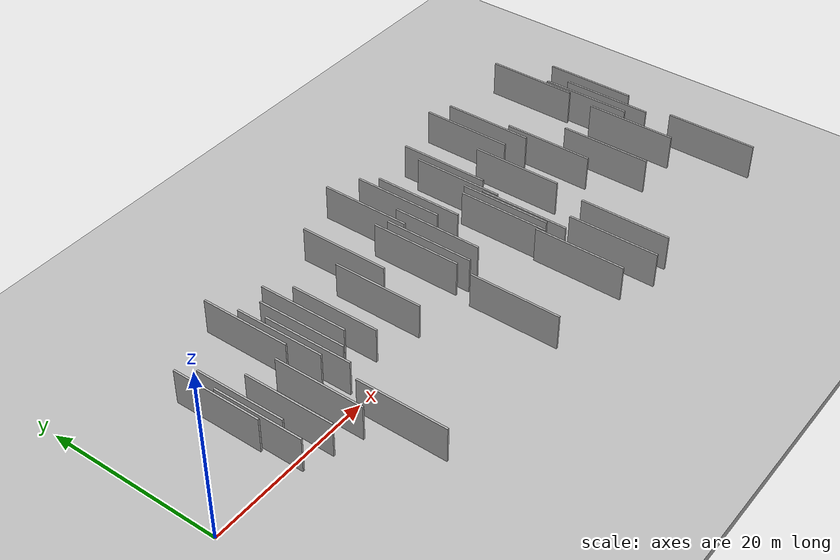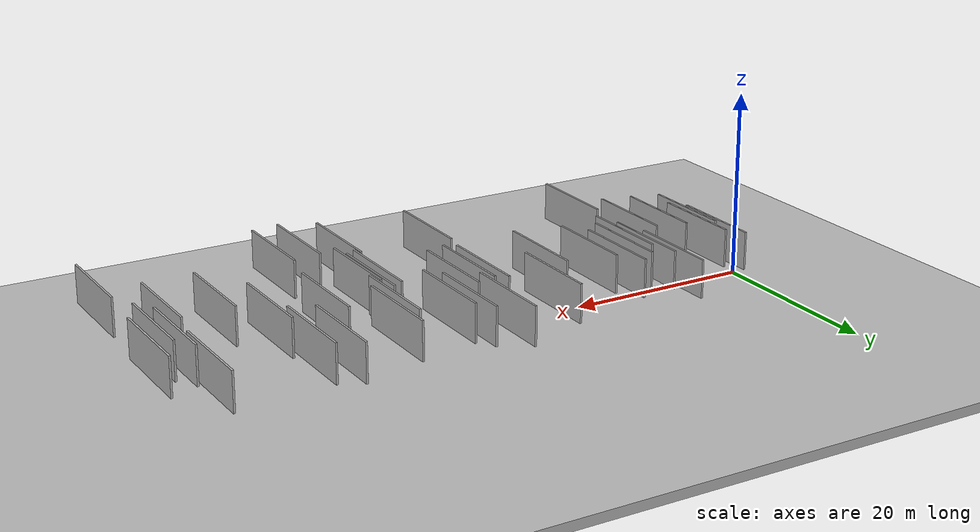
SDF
<?xml version="1.0" encoding="utf-8"?>

<sdf version="1.6">

   <world name="default">

      <gui fullscreen="0">

         <camera name="user_camera">

            <pose>-15 0 4.57585 0 0 0</pose>

            <view_controller>orbit</view_controller>

         </camera>

      </gui>

      <scene>

         <sky>

           <clouds>

             <speed>12</speed>

           </clouds>

         </sky>

         <ambient>0.4 0.4 0.4 1</ambient>

         <background>0.7 0.7 0.7 1</background>

         <shadows>1</shadows>

      </scene>

      <gravity>0 0 -9.8066</gravity>

      <magnetic_field>6e-06 2.3e-05 -4.2e-05</magnetic_field>

      <physics default="0" name="default_physics" type="ode">

         <ode>

            <solver>

               <type>quick</type>

               <iters>10</iters>

               <sor>1.0</sor>

               <use_dynamic_moi_rescaling>0</use_dynamic_moi_rescaling>

            </solver>

            <constraints>

               <cfm>0</cfm>

               <erp>0.2</erp>

               <contact_max_correcting_vel>100</contact_max_correcting_vel>

               <contact_surface_layer>0.001</contact_surface_layer>

            </constraints>

         </ode>

         <max_step_size>0.004</max_step_size>

         <real_time_factor>1</real_time_factor>

         <real_time_update_rate>250</real_time_update_rate>

      </physics>

      <light name="sun" type="directional">

         <cast_shadows>1</cast_shadows>

         <pose>0 0 10 0 0 0</pose>

         <diffuse>0.8 0.8 0.8 1</diffuse>

         <specular>0.2 0.2 0.2 1</specular>

         <attenuation>

            <range>1000</range>

            <constant>0.9</constant>

            <linear>0.01</linear>

            <quadratic>0.001</quadratic>

         </attenuation>

         <direction>-0.5 0.1 -0.9</direction>

      </light>

      <include>

         <name>ground_plane_1</name>

         <uri>model://HANNAS_ground_plane</uri>

         <pose>0 0 0  0 0 0</pose>

      </include>

      <include>

         <name>ground_plane_2</name>

         <uri>model://HANNAS_ground_plane</uri>

         <pose>100 0 0  0 0 0</pose>

      </include>

      <model name="HANNAS_wall_1">

         <static>1</static>

         <pose frame="">15.5890 -8.3311 5.0 0.000000 0.000000 1.570796</pose>

         <link name="link">

            <pose frame="">0 0 2.00 0 0 0</pose>

            <collision name="collision">

               <geometry>

                  <box>

                     <size>10.00 0.2 4.00</size>

                  </box>

               </geometry>

               <max_contacts>10</max_contacts>

               <surface>

                  <contact>

                     <ode/>

                  </contact>

                  <bounce/>

                  <friction>

                     <torsional>

                        <ode/>

                     </torsional>

                     <ode/>

                  </friction>

               </surface>

            </collision>

            <visual name="visual">

               <cast_shadows>0</cast_shadows>

               <geometry>

                  <box>

                     <size>10.00 0.2 4.00</size>

                  </box>

               </geometry>

               <material>

                  <script>

                     <uri>model://HANNAS_wall/materials/scripts</uri>

                     <uri>model://HANNAS_wall/materials/textures</uri>

                     <name>vrc/HANNAS_wall</name>

                  </script>

               </material>

            </visual>

            <self_collide>0</self_collide>

            <enable_wind>0</enable_wind>

            <kinematic>0</kinematic>

         </link>

      </model>

      <model name="HANNAS_wall_2">

         <static>1</static>

         <pose frame="">21.6194 4.1106 5.0 0.000000 0.000000 1.570796</pose>

         <link name="link">

            <pose frame="">0 0 2.00 0 0 0</pose>

            <collision name="collision">

               <geometry>

                  <box>

                     <size>10.00 0.2 4.00</size>

                  </box>

               </geometry>

               <max_contacts>10</max_contacts>

               <surface>

                  <contact>

                     <ode/>

                  </contact>

                  <bounce/>

                  <friction>

                     <torsional>

                        <ode/>

                     </torsional>

                     <ode/>

                  </friction>

               </surface>

            </collision>

            <visual name="visual">

               <cast_shadows>0</cast_shadows>

               <geometry>

                  <box>

                     <size>10.00 0.2 4.00</size>

                  </box>

               </geometry>

               <material>

                  <script>

                     <uri>model://HANNAS_wall/materials/scripts</uri>

                     <uri>model://HANNAS_wall/materials/textures</uri>

                     <name>vrc/HANNAS_wall</name>

                  </script>

               </material>

            </visual>

            <self_collide>0</self_collide>

            <enable_wind>0</enable_wind>

            <kinematic>0</kinematic>

         </link>

      </model>

      <model name="HANNAS_wall_3">

         <static>1</static>

         <pose frame="">10.1563 -0.1490 5.0 0.000000 0.000000 1.570796</pose>

         <link name="link">

            <pose frame="">0 0 2.00 0 0 0</pose>

            <collision name="collision">

               <geometry>

                  <box>

                     <size>10.00 0.2 4.00</size>

                  </box>

               </geometry>

               <max_contacts>10</max_contacts>

               <surface>

                  <contact>

                     <ode/>

                  </contact>

                  <bounce/>

                  <friction>

                     <torsional>

                        <ode/>

                     </torsional>

                     <ode/>

                  </friction>

               </surface>

            </collision>

            <visual name="visual">

               <cast_shadows>0</cast_shadows>

               <geometry>

                  <box>

                     <size>10.00 0.2 4.00</size>

                  </box>

               </geometry>

               <material>

                  <script>

                     <uri>model://HANNAS_wall/materials/scripts</uri>

                     <uri>model://HANNAS_wall/materials/textures</uri>

                     <name>vrc/HANNAS_wall</name>

                  </script>

               </material>

            </visual>

            <self_collide>0</self_collide>

            <enable_wind>0</enable_wind>

            <kinematic>0</kinematic>

         </link>

      </model>

      <model name="HANNAS_wall_4">

         <static>1</static>

         <pose frame="">7.2068 0.8207 5.0 0.000000 0.000000 1.570796</pose>

         <link name="link">

            <pose frame="">0 0 2.00 0 0 0</pose>

            <collision name="collision">

               <geometry>

                  <box>

                     <size>10.00 0.2 4.00</size>

                  </box>

               </geometry>

               <max_contacts>10</max_contacts>

               <surface>

                  <contact>

                     <ode/>

                  </contact>

                  <bounce/>

                  <friction>

                     <torsional>

                        <ode/>

                     </torsional>

                     <ode/>

                  </friction>

               </surface>

            </collision>

            <visual name="visual">

               <cast_shadows>0</cast_shadows>

               <geometry>

                  <box>

                     <size>10.00 0.2 4.00</size>

                  </box>

               </geometry>

               <material>

                  <script>

                     <uri>model://HANNAS_wall/materials/scripts</uri>

                     <uri>model://HANNAS_wall/materials/textures</uri>

                     <name>vrc/HANNAS_wall</name>

                  </script>

               </material>

            </visual>

            <self_collide>0</self_collide>

            <enable_wind>0</enable_wind>

            <kinematic>0</kinematic>

         </link>

      </model>

      <model name="HANNAS_wall_5">

         <static>1</static>

         <pose frame="">39.8108 8.0568 5.0 0.000000 0.000000 1.570796</pose>

         <link name="link">

            <pose frame="">0 0 2.00 0 0 0</pose>

            <collision name="collision">

               <geometry>

                  <box>

                     <size>10.00 0.2 4.00</size>

                  </box>

               </geometry>

               <max_contacts>10</max_contacts>

               <surface>

                  <contact>

                     <ode/>

                  </contact>

                  <bounce/>

                  <friction>

                     <torsional>

                        <ode/>

                     </torsional>

                     <ode/>

                  </friction>

               </surface>

            </collision>

            <visual name="visual">

               <cast_shadows>0</cast_shadows>

               <geometry>

                  <box>

                     <size>10.00 0.2 4.00</size>

                  </box>

               </geometry>

               <material>

                  <script>

                     <uri>model://HANNAS_wall/materials/scripts</uri>

                     <uri>model://HANNAS_wall/materials/textures</uri>

                     <name>vrc/HANNAS_wall</name>

                  </script>

               </material>

            </visual>

            <self_collide>0</self_collide>

            <enable_wind>0</enable_wind>

            <kinematic>0</kinematic>

         </link>

      </model>

      <model name="HANNAS_wall_6">

         <static>1</static>

         <pose frame="">33.6187 3.7154 5.0 0.000000 0.000000 1.570796</pose>

         <link name="link">

            <pose frame="">0 0 2.00 0 0 0</pose>

            <collision name="collision">

               <geometry>

                  <box>

                     <size>10.00 0.2 4.00</size>

                  </box>

               </geometry>

               <max_contacts>10</max_contacts>

               <surface>

                  <contact>

                     <ode/>

                  </contact>

                  <bounce/>

                  <friction>

                     <torsional>

                        <ode/>

                     </torsional>

                     <ode/>

                  </friction>

               </surface>

            </collision>

            <visual name="visual">

               <cast_shadows>0</cast_shadows>

               <geometry>

                  <box>

                     <size>10.00 0.2 4.00</size>

                  </box>

               </geometry>

               <material>

                  <script>

                     <uri>model://HANNAS_wall/materials/scripts</uri>

                     <uri>model://HANNAS_wall/materials/textures</uri>

                     <name>vrc/HANNAS_wall</name>

                  </script>

               </material>

            </visual>

            <self_collide>0</self_collide>

            <enable_wind>0</enable_wind>

            <kinematic>0</kinematic>

         </link>

      </model>

      <model name="HANNAS_wall_7">

         <static>1</static>

         <pose frame="">68.3267 5.3271 5.0 0.000000 0.000000 1.570796</pose>

         <link name="link">

            <pose frame="">0 0 2.00 0 0 0</pose>

            <collision name="collision">

               <geometry>

                  <box>

                     <size>10.00 0.2 4.00</size>

                  </box>

               </geometry>

               <max_contacts>10</max_contacts>

               <surface>

                  <contact>

                     <ode/>

                  </contact>

                  <bounce/>

                  <friction>

                     <torsional>

                        <ode/>

                     </torsional>

                     <ode/>

                  </friction>

               </surface>

            </collision>

            <visual name="visual">

               <cast_shadows>0</cast_shadows>

               <geometry>

                  <box>

                     <size>10.00 0.2 4.00</size>

                  </box>

               </geometry>

               <material>

                  <script>

                     <uri>model://HANNAS_wall/materials/scripts</uri>

                     <uri>model://HANNAS_wall/materials/textures</uri>

                     <name>vrc/HANNAS_wall</name>

                  </script>

               </material>

            </visual>

            <self_collide>0</self_collide>

            <enable_wind>0</enable_wind>

            <kinematic>0</kinematic>

         </link>

      </model>

      <model name="HANNAS_wall_8">

         <static>1</static>

         <pose frame="">46.3259 -10.9554 5.0 0.000000 0.000000 1.570796</pose>

         <link name="link">

            <pose frame="">0 0 2.00 0 0 0</pose>

            <collision name="collision">

               <geometry>

                  <box>

                     <size>10.00 0.2 4.00</size>

                  </box>

               </geometry>

               <max_contacts>10</max_contacts>

               <surface>

                  <contact>

                     <ode/>

                  </contact>

                  <bounce/>

                  <friction>

                     <torsional>

                        <ode/>

                     </torsional>

                     <ode/>

                  </friction>

               </surface>

            </collision>

            <visual name="visual">

               <cast_shadows>0</cast_shadows>

               <geometry>

                  <box>

                     <size>10.00 0.2 4.00</size>

                  </box>

               </geometry>

               <material>

                  <script>

                     <uri>model://HANNAS_wall/materials/scripts</uri>

                     <uri>model://HANNAS_wall/materials/textures</uri>

                     <name>vrc/HANNAS_wall</name>

                  </script>

               </material>

            </visual>

            <self_collide>0</self_collide>

            <enable_wind>0</enable_wind>

            <kinematic>0</kinematic>

         </link>

      </model>

      <model name="HANNAS_wall_9">

         <static>1</static>

         <pose frame="">43.0103 -0.1983 5.0 0.000000 0.000000 1.570796</pose>

         <link name="link">

            <pose frame="">0 0 2.00 0 0 0</pose>

            <collision name="collision">

               <geometry>

                  <box>

                     <size>10.00 0.2 4.00</size>

                  </box>

               </geometry>

               <max_contacts>10</max_contacts>

               <surface>

                  <contact>

                     <ode/>

                  </contact>

                  <bounce/>

                  <friction>

                     <torsional>

                        <ode/>

                     </torsional>

                     <ode/>

                  </friction>

               </surface>

            </collision>

            <visual name="visual">

               <cast_shadows>0</cast_shadows>

               <geometry>

                  <box>

                     <size>10.00 0.2 4.00</size>

                  </box>

               </geometry>

               <material>

                  <script>

                     <uri>model://HANNAS_wall/materials/scripts</uri>

                     <uri>model://HANNAS_wall/materials/textures</uri>

                     <name>vrc/HANNAS_wall</name>

                  </script>

               </material>

            </visual>

            <self_collide>0</self_collide>

            <enable_wind>0</enable_wind>

            <kinematic>0</kinematic>

         </link>

      </model>

      <model name="HANNAS_wall_10">

         <static>1</static>

         <pose frame="">15.2103 9.4511 5.0 0.000000 0.000000 1.570796</pose>

         <link name="link">

            <pose frame="">0 0 2.00 0 0 0</pose>

            <collision name="collision">

               <geometry>

                  <box>

                     <size>10.00 0.2 4.00</size>

                  </box>

               </geometry>

               <max_contacts>10</max_contacts>

               <surface>

                  <contact>

                     <ode/>

                  </contact>

                  <bounce/>

                  <friction>

                     <torsional>

                        <ode/>

                     </torsional>

                     <ode/>

                  </friction>

               </surface>

            </collision>

            <visual name="visual">

               <cast_shadows>0</cast_shadows>

               <geometry>

                  <box>

                     <size>10.00 0.2 4.00</size>

                  </box>

               </geometry>

               <material>

                  <script>

                     <uri>model://HANNAS_wall/materials/scripts</uri>

                     <uri>model://HANNAS_wall/materials/textures</uri>

                     <name>vrc/HANNAS_wall</name>

                  </script>

               </material>

            </visual>

            <self_collide>0</self_collide>

            <enable_wind>0</enable_wind>

            <kinematic>0</kinematic>

         </link>

      </model>

      <model name="HANNAS_wall_11">

         <static>1</static>

         <pose frame="">13.2590 -0.9786 5.0 0.000000 0.000000 1.570796</pose>

         <link name="link">

            <pose frame="">0 0 2.00 0 0 0</pose>

            <collision name="collision">

               <geometry>

                  <box>

                     <size>10.00 0.2 4.00</size>

                  </box>

               </geometry>

               <max_contacts>10</max_contacts>

               <surface>

                  <contact>

                     <ode/>

                  </contact>

                  <bounce/>

                  <friction>

                     <torsional>

                        <ode/>

                     </torsional>

                     <ode/>

                  </friction>

               </surface>

            </collision>

            <visual name="visual">

               <cast_shadows>0</cast_shadows>

               <geometry>

                  <box>

                     <size>10.00 0.2 4.00</size>

                  </box>

               </geometry>

               <material>

                  <script>

                     <uri>model://HANNAS_wall/materials/scripts</uri>

                     <uri>model://HANNAS_wall/materials/textures</uri>

                     <name>vrc/HANNAS_wall</name>

                  </script>

               </material>

            </visual>

            <self_collide>0</self_collide>

            <enable_wind>0</enable_wind>

            <kinematic>0</kinematic>

         </link>

      </model>

      <model name="HANNAS_wall_12">

         <static>1</static>

         <pose frame="">66.7112 2.2286 5.0 0.000000 0.000000 1.570796</pose>

         <link name="link">

            <pose frame="">0 0 2.00 0 0 0</pose>

            <collision name="collision">

               <geometry>

                  <box>

                     <size>10.00 0.2 4.00</size>

                  </box>

               </geometry>

               <max_contacts>10</max_contacts>

               <surface>

                  <contact>

                     <ode/>

                  </contact>

                  <bounce/>

                  <friction>

                     <torsional>

                        <ode/>

                     </torsional>

                     <ode/>

                  </friction>

               </surface>

            </collision>

            <visual name="visual">

               <cast_shadows>0</cast_shadows>

               <geometry>

                  <box>

                     <size>10.00 0.2 4.00</size>

                  </box>

               </geometry>

               <material>

                  <script>

                     <uri>model://HANNAS_wall/materials/scripts</uri>

                     <uri>model://HANNAS_wall/materials/textures</uri>

                     <name>vrc/HANNAS_wall</name>

                  </script>

               </material>

            </visual>

            <self_collide>0</self_collide>

            <enable_wind>0</enable_wind>

            <kinematic>0</kinematic>

         </link>

      </model>

      <model name="HANNAS_wall_13">

         <static>1</static>

         <pose frame="">19.9038 6.4861 5.0 0.000000 0.000000 1.570796</pose>

         <link name="link">

            <pose frame="">0 0 2.00 0 0 0</pose>

            <collision name="collision">

               <geometry>

                  <box>

                     <size>10.00 0.2 4.00</size>

                  </box>

               </geometry>

               <max_contacts>10</max_contacts>

               <surface>

                  <contact>

                     <ode/>

                  </contact>

                  <bounce/>

                  <friction>

                     <torsional>

                        <ode/>

                     </torsional>

                     <ode/>

                  </friction>

               </surface>

            </collision>

            <visual name="visual">

               <cast_shadows>0</cast_shadows>

               <geometry>

                  <box>

                     <size>10.00 0.2 4.00</size>

                  </box>

               </geometry>

               <material>

                  <script>

                     <uri>model://HANNAS_wall/materials/scripts</uri>

                     <uri>model://HANNAS_wall/materials/textures</uri>

                     <name>vrc/HANNAS_wall</name>

                  </script>

               </material>

            </visual>

            <self_collide>0</self_collide>

            <enable_wind>0</enable_wind>

            <kinematic>0</kinematic>

         </link>

      </model>

      <model name="HANNAS_wall_14">

         <static>1</static>

         <pose frame="">64.1632 -2.3505 5.0 0.000000 0.000000 1.570796</pose>

         <link name="link">

            <pose frame="">0 0 2.00 0 0 0</pose>

            <collision name="collision">

               <geometry>

                  <box>

                     <size>10.00 0.2 4.00</size>

                  </box>

               </geometry>

               <max_contacts>10</max_contacts>

               <surface>

                  <contact>

                     <ode/>

                  </contact>

                  <bounce/>

                  <friction>

                     <torsional>

                        <ode/>

                     </torsional>

                     <ode/>

                  </friction>

               </surface>

            </collision>

            <visual name="visual">

               <cast_shadows>0</cast_shadows>

               <geometry>

                  <box>

                     <size>10.00 0.2 4.00</size>

                  </box>

               </geometry>

               <material>

                  <script>

                     <uri>model://HANNAS_wall/materials/scripts</uri>

                     <uri>model://HANNAS_wall/materials/textures</uri>

                     <name>vrc/HANNAS_wall</name>

                  </script>

               </material>

            </visual>

            <self_collide>0</self_collide>

            <enable_wind>0</enable_wind>

            <kinematic>0</kinematic>

         </link>

      </model>

      <model name="HANNAS_wall_15">

         <static>1</static>

         <pose frame="">65.4252 4.1404 5.0 0.000000 0.000000 1.570796</pose>

         <link name="link">

            <pose frame="">0 0 2.00 0 0 0</pose>

            <collision name="collision">

               <geometry>

                  <box>

                     <size>10.00 0.2 4.00</size>

                  </box>

               </geometry>

               <max_contacts>10</max_contacts>

               <surface>

                  <contact>

                     <ode/>

                  </contact>

                  <bounce/>

                  <friction>

                     <torsional>

                        <ode/>

                     </torsional>

                     <ode/>

                  </friction>

               </surface>

            </collision>

            <visual name="visual">

               <cast_shadows>0</cast_shadows>

               <geometry>

                  <box>

                     <size>10.00 0.2 4.00</size>

                  </box>

               </geometry>

               <material>

                  <script>

                     <uri>model://HANNAS_wall/materials/scripts</uri>

                     <uri>model://HANNAS_wall/materials/textures</uri>

                     <name>vrc/HANNAS_wall</name>

                  </script>

               </material>

            </visual>

            <self_collide>0</self_collide>

            <enable_wind>0</enable_wind>

            <kinematic>0</kinematic>

         </link>

      </model>

      <model name="HANNAS_wall_16">

         <static>1</static>

         <pose frame="">42.6515 -9.3443 5.0 0.000000 0.000000 1.570796</pose>

         <link name="link">

            <pose frame="">0 0 2.00 0 0 0</pose>

            <collision name="collision">

               <geometry>

                  <box>

                     <size>10.00 0.2 4.00</size>

                  </box>

               </geometry>

               <max_contacts>10</max_contacts>

               <surface>

                  <contact>

                     <ode/>

                  </contact>

                  <bounce/>

                  <friction>

                     <torsional>

                        <ode/>

                     </torsional>

                     <ode/>

                  </friction>

               </surface>

            </collision>

            <visual name="visual">

               <cast_shadows>0</cast_shadows>

               <geometry>

                  <box>

                     <size>10.00 0.2 4.00</size>

                  </box>

               </geometry>

               <material>

                  <script>

                     <uri>model://HANNAS_wall/materials/scripts</uri>

                     <uri>model://HANNAS_wall/materials/textures</uri>

                     <name>vrc/HANNAS_wall</name>

                  </script>

               </material>

            </visual>

            <self_collide>0</self_collide>

            <enable_wind>0</enable_wind>

            <kinematic>0</kinematic>

         </link>

      </model>

      <model name="HANNAS_wall_17">

         <static>1</static>

         <pose frame="">55.6473 2.7194 5.0 0.000000 0.000000 1.570796</pose>

         <link name="link">

            <pose frame="">0 0 2.00 0 0 0</pose>

            <collision name="collision">

               <geometry>

                  <box>

                     <size>10.00 0.2 4.00</size>

                  </box>

               </geometry>

               <max_contacts>10</max_contacts>

               <surface>

                  <contact>

                     <ode/>

                  </contact>

                  <bounce/>

                  <friction>

                     <torsional>

                        <ode/>

                     </torsional>

                     <ode/>

                  </friction>

               </surface>

            </collision>

            <visual name="visual">

               <cast_shadows>0</cast_shadows>

               <geometry>

                  <box>

                     <size>10.00 0.2 4.00</size>

                  </box>

               </geometry>

               <material>

                  <script>

                     <uri>model://HANNAS_wall/materials/scripts</uri>

                     <uri>model://HANNAS_wall/materials/textures</uri>

                     <name>vrc/HANNAS_wall</name>

                  </script>

               </material>

            </visual>

            <self_collide>0</self_collide>

            <enable_wind>0</enable_wind>

            <kinematic>0</kinematic>

         </link>

      </model>

      <model name="HANNAS_wall_18">

         <static>1</static>

         <pose frame="">26.6240 2.9596 5.0 0.000000 0.000000 1.570796</pose>

         <link name="link">

            <pose frame="">0 0 2.00 0 0 0</pose>

            <collision name="collision">

               <geometry>

                  <box>

                     <size>10.00 0.2 4.00</size>

                  </box>

               </geometry>

               <max_contacts>10</max_contacts>

               <surface>

                  <contact>

                     <ode/>

                  </contact>

                  <bounce/>

                  <friction>

                     <torsional>

                        <ode/>

                     </torsional>

                     <ode/>

                  </friction>

               </surface>

            </collision>

            <visual name="visual">

               <cast_shadows>0</cast_shadows>

               <geometry>

                  <box>

                     <size>10.00 0.2 4.00</size>

                  </box>

               </geometry>

               <material>

                  <script>

                     <uri>model://HANNAS_wall/materials/scripts</uri>

                     <uri>model://HANNAS_wall/materials/textures</uri>

                     <name>vrc/HANNAS_wall</name>

                  </script>

               </material>

            </visual>

            <self_collide>0</self_collide>

            <enable_wind>0</enable_wind>

            <kinematic>0</kinematic>

         </link>

      </model>

      <model name="HANNAS_wall_19">

         <static>1</static>

         <pose frame="">34.7905 3.0226 5.0 0.000000 0.000000 1.570796</pose>

         <link name="link">

            <pose frame="">0 0 2.00 0 0 0</pose>

            <collision name="collision">

               <geometry>

                  <box>

                     <size>10.00 0.2 4.00</size>

                  </box>

               </geometry>

               <max_contacts>10</max_contacts>

               <surface>

                  <contact>

                     <ode/>

                  </contact>

                  <bounce/>

                  <friction>

                     <torsional>

                        <ode/>

                     </torsional>

                     <ode/>

                  </friction>

               </surface>

            </collision>

            <visual name="visual">

               <cast_shadows>0</cast_shadows>

               <geometry>

                  <box>

                     <size>10.00 0.2 4.00</size>

                  </box>

               </geometry>

               <material>

                  <script>

                     <uri>model://HANNAS_wall/materials/scripts</uri>

                     <uri>model://HANNAS_wall/materials/textures</uri>

                     <name>vrc/HANNAS_wall</name>

                  </script>

               </material>

            </visual>

            <self_collide>0</self_collide>

            <enable_wind>0</enable_wind>

            <kinematic>0</kinematic>

         </link>

      </model>

      <model name="HANNAS_wall_20">

         <static>1</static>

         <pose frame="">45.9632 9.3044 5.0 0.000000 0.000000 1.570796</pose>

         <link name="link">

            <pose frame="">0 0 2.00 0 0 0</pose>

            <collision name="collision">

               <geometry>

                  <box>

                     <size>10.00 0.2 4.00</size>

                  </box>

               </geometry>

               <max_contacts>10</max_contacts>

               <surface>

                  <contact>

                     <ode/>

                  </contact>

                  <bounce/>

                  <friction>

                     <torsional>

                        <ode/>

                     </torsional>

                     <ode/>

                  </friction>

               </surface>

            </collision>

            <visual name="visual">

               <cast_shadows>0</cast_shadows>

               <geometry>

                  <box>

                     <size>10.00 0.2 4.00</size>

                  </box>

               </geometry>

               <material>

                  <script>

                     <uri>model://HANNAS_wall/materials/scripts</uri>

                     <uri>model://HANNAS_wall/materials/textures</uri>

                     <name>vrc/HANNAS_wall</name>

                  </script>

               </material>

            </visual>

            <self_collide>0</self_collide>

            <enable_wind>0</enable_wind>

            <kinematic>0</kinematic>

         </link>

      </model>

      <model name="HANNAS_wall_21">

         <static>1</static>

         <pose frame="">7.9739 3.5610 5.0 0.000000 0.000000 1.570796</pose>

         <link name="link">

            <pose frame="">0 0 2.00 0 0 0</pose>

            <collision name="collision">

               <geometry>

                  <box>

                     <size>10.00 0.2 4.00</size>

                  </box>

               </geometry>

               <max_contacts>10</max_contacts>

               <surface>

                  <contact>

                     <ode/>

                  </contact>

                  <bounce/>

                  <friction>

                     <torsional>

                        <ode/>

                     </torsional>

                     <ode/>

                  </friction>

               </surface>

            </collision>

            <visual name="visual">

               <cast_shadows>0</cast_shadows>

               <geometry>

                  <box>

                     <size>10.00 0.2 4.00</size>

                  </box>

               </geometry>

               <material>

                  <script>

                     <uri>model://HANNAS_wall/materials/scripts</uri>

                     <uri>model://HANNAS_wall/materials/textures</uri>

                     <name>vrc/HANNAS_wall</name>

                  </script>

               </material>

            </visual>

            <self_collide>0</self_collide>

            <enable_wind>0</enable_wind>

            <kinematic>0</kinematic>

         </link>

      </model>

      <model name="HANNAS_wall_22">

         <static>1</static>

         <pose frame="">44.4769 -1.6708 5.0 0.000000 0.000000 1.570796</pose>

         <link name="link">

            <pose frame="">0 0 2.00 0 0 0</pose>

            <collision name="collision">

               <geometry>

                  <box>

                     <size>10.00 0.2 4.00</size>

                  </box>

               </geometry>

               <max_contacts>10</max_contacts>

               <surface>

                  <contact>

                     <ode/>

                  </contact>

                  <bounce/>

                  <friction>

                     <torsional>

                        <ode/>

                     </torsional>

                     <ode/>

                  </friction>

               </surface>

            </collision>

            <visual name="visual">

               <cast_shadows>0</cast_shadows>

               <geometry>

                  <box>

                     <size>10.00 0.2 4.00</size>

                  </box>

               </geometry>

               <material>

                  <script>

                     <uri>model://HANNAS_wall/materials/scripts</uri>

                     <uri>model://HANNAS_wall/materials/textures</uri>

                     <name>vrc/HANNAS_wall</name>

                  </script>

               </material>

            </visual>

            <self_collide>0</self_collide>

            <enable_wind>0</enable_wind>

            <kinematic>0</kinematic>

         </link>

      </model>

      <model name="HANNAS_wall_23">

         <static>1</static>

         <pose frame="">16.8695 3.3602 5.0 0.000000 0.000000 1.570796</pose>

         <link name="link">

            <pose frame="">0 0 2.00 0 0 0</pose>

            <collision name="collision">

               <geometry>

                  <box>

                     <size>10.00 0.2 4.00</size>

                  </box>

               </geometry>

               <max_contacts>10</max_contacts>

               <surface>

                  <contact>

                     <ode/>

                  </contact>

                  <bounce/>

                  <friction>

                     <torsional>

                        <ode/>

                     </torsional>

                     <ode/>

                  </friction>

               </surface>

            </collision>

            <visual name="visual">

               <cast_shadows>0</cast_shadows>

               <geometry>

                  <box>

                     <size>10.00 0.2 4.00</size>

                  </box>

               </geometry>

               <material>

                  <script>

                     <uri>model://HANNAS_wall/materials/scripts</uri>

                     <uri>model://HANNAS_wall/materials/textures</uri>

                     <name>vrc/HANNAS_wall</name>

                  </script>

               </material>

            </visual>

            <self_collide>0</self_collide>

            <enable_wind>0</enable_wind>

            <kinematic>0</kinematic>

         </link>

      </model>

      <model name="HANNAS_wall_24">

         <static>1</static>

         <pose frame="">6.7485 5.2381 5.0 0.000000 0.000000 1.570796</pose>

         <link name="link">

            <pose frame="">0 0 2.00 0 0 0</pose>

            <collision name="collision">

               <geometry>

                  <box>

                     <size>10.00 0.2 4.00</size>

                  </box>

               </geometry>

               <max_contacts>10</max_contacts>

               <surface>

                  <contact>

                     <ode/>

                  </contact>

                  <bounce/>

                  <friction>

                     <torsional>

                        <ode/>

                     </torsional>

                     <ode/>

                  </friction>

               </surface>

            </collision>

            <visual name="visual">

               <cast_shadows>0</cast_shadows>

               <geometry>

                  <box>

                     <size>10.00 0.2 4.00</size>

                  </box>

               </geometry>

               <material>

                  <script>

                     <uri>model://HANNAS_wall/materials/scripts</uri>

                     <uri>model://HANNAS_wall/materials/textures</uri>

                     <name>vrc/HANNAS_wall</name>

                  </script>

               </material>

            </visual>

            <self_collide>0</self_collide>

            <enable_wind>0</enable_wind>

            <kinematic>0</kinematic>

         </link>

      </model>

      <model name="HANNAS_wall_25">

         <static>1</static>

         <pose frame="">49.2629 -10.5195 5.0 0.000000 0.000000 1.570796</pose>

         <link name="link">

            <pose frame="">0 0 2.00 0 0 0</pose>

            <collision name="collision">

               <geometry>

                  <box>

                     <size>10.00 0.2 4.00</size>

                  </box>

               </geometry>

               <max_contacts>10</max_contacts>

               <surface>

                  <contact>

                     <ode/>

                  </contact>

                  <bounce/>

                  <friction>

                     <torsional>

                        <ode/>

                     </torsional>

                     <ode/>

                  </friction>

               </surface>

            </collision>

            <visual name="visual">

               <cast_shadows>0</cast_shadows>

               <geometry>

                  <box>

                     <size>10.00 0.2 4.00</size>

                  </box>

               </geometry>

               <material>

                  <script>

                     <uri>model://HANNAS_wall/materials/scripts</uri>

                     <uri>model://HANNAS_wall/materials/textures</uri>

                     <name>vrc/HANNAS_wall</name>

                  </script>

               </material>

            </visual>

            <self_collide>0</self_collide>

            <enable_wind>0</enable_wind>

            <kinematic>0</kinematic>

         </link>

      </model>

      <model name="HANNAS_wall_26">

         <static>1</static>

         <pose frame="">44.8782 6.7873 5.0 0.000000 0.000000 1.570796</pose>

         <link name="link">

            <pose frame="">0 0 2.00 0 0 0</pose>

            <collision name="collision">

               <geometry>

                  <box>

                     <size>10.00 0.2 4.00</size>

                  </box>

               </geometry>

               <max_contacts>10</max_contacts>

               <surface>

                  <contact>

                     <ode/>

                  </contact>

                  <bounce/>

                  <friction>

                     <torsional>

                        <ode/>

                     </torsional>

                     <ode/>

                  </friction>

               </surface>

            </collision>

            <visual name="visual">

               <cast_shadows>0</cast_shadows>

               <geometry>

                  <box>

                     <size>10.00 0.2 4.00</size>

                  </box>

               </geometry>

               <material>

                  <script>

                     <uri>model://HANNAS_wall/materials/scripts</uri>

                     <uri>model://HANNAS_wall/materials/textures</uri>

                     <name>vrc/HANNAS_wall</name>

                  </script>

               </material>

            </visual>

            <self_collide>0</self_collide>

            <enable_wind>0</enable_wind>

            <kinematic>0</kinematic>

         </link>

      </model>

      <model name="HANNAS_wall_27">

         <static>1</static>

         <pose frame="">33.1742 -8.2049 5.0 0.000000 0.000000 1.570796</pose>

         <link name="link">

            <pose frame="">0 0 2.00 0 0 0</pose>

            <collision name="collision">

               <geometry>

                  <box>

                     <size>10.00 0.2 4.00</size>

                  </box>

               </geometry>

               <max_contacts>10</max_contacts>

               <surface>

                  <contact>

                     <ode/>

                  </contact>

                  <bounce/>

                  <friction>

                     <torsional>

                        <ode/>

                     </torsional>

                     <ode/>

                  </friction>

               </surface>

            </collision>

            <visual name="visual">

               <cast_shadows>0</cast_shadows>

               <geometry>

                  <box>

                     <size>10.00 0.2 4.00</size>

                  </box>

               </geometry>

               <material>

                  <script>

                     <uri>model://HANNAS_wall/materials/scripts</uri>

                     <uri>model://HANNAS_wall/materials/textures</uri>

                     <name>vrc/HANNAS_wall</name>

                  </script>

               </material>

            </visual>

            <self_collide>0</self_collide>

            <enable_wind>0</enable_wind>

            <kinematic>0</kinematic>

         </link>

      </model>

      <model name="HANNAS_wall_28">

         <static>1</static>

         <pose frame="">64.9102 10.8409 5.0 0.000000 0.000000 1.570796</pose>

         <link name="link">

            <pose frame="">0 0 2.00 0 0 0</pose>

            <collision name="collision">

               <geometry>

                  <box>

                     <size>10.00 0.2 4.00</size>

                  </box>

               </geometry>

               <max_contacts>10</max_contacts>

               <surface>

                  <contact>

                     <ode/>

                  </contact>

                  <bounce/>

                  <friction>

                     <torsional>

                        <ode/>

                     </torsional>

                     <ode/>

                  </friction>

               </surface>

            </collision>

            <visual name="visual">

               <cast_shadows>0</cast_shadows>

               <geometry>

                  <box>

                     <size>10.00 0.2 4.00</size>

                  </box>

               </geometry>

               <material>

                  <script>

                     <uri>model://HANNAS_wall/materials/scripts</uri>

                     <uri>model://HANNAS_wall/materials/textures</uri>

                     <name>vrc/HANNAS_wall</name>

                  </script>

               </material>

            </visual>

            <self_collide>0</self_collide>

            <enable_wind>0</enable_wind>

            <kinematic>0</kinematic>

         </link>

      </model>

      <model name="HANNAS_wall_29">

         <static>1</static>

         <pose frame="">28.8747 8.8919 5.0 0.000000 0.000000 1.570796</pose>

         <link name="link">

            <pose frame="">0 0 2.00 0 0 0</pose>

            <collision name="collision">

               <geometry>

                  <box>

                     <size>10.00 0.2 4.00</size>

                  </box>

               </geometry>

               <max_contacts>10</max_contacts>

               <surface>

                  <contact>

                     <ode/>

                  </contact>

                  <bounce/>

                  <friction>

                     <torsional>

                        <ode/>

                     </torsional>

                     <ode/>

                  </friction>

               </surface>

            </collision>

            <visual name="visual">

               <cast_shadows>0</cast_shadows>

               <geometry>

                  <box>

                     <size>10.00 0.2 4.00</size>

                  </box>

               </geometry>

               <material>

                  <script>

                     <uri>model://HANNAS_wall/materials/scripts</uri>

                     <uri>model://HANNAS_wall/materials/textures</uri>

                     <name>vrc/HANNAS_wall</name>

                  </script>

               </material>

            </visual>

            <self_collide>0</self_collide>

            <enable_wind>0</enable_wind>

            <kinematic>0</kinematic>

         </link>

      </model>

      <model name="HANNAS_wall_30">

         <static>1</static>

         <pose frame="">52.5058 11.0663 5.0 0.000000 0.000000 1.570796</pose>

         <link name="link">

            <pose frame="">0 0 2.00 0 0 0</pose>

            <collision name="collision">

               <geometry>

                  <box>

                     <size>10.00 0.2 4.00</size>

                  </box>

               </geometry>

               <max_contacts>10</max_contacts>

               <surface>

                  <contact>

                     <ode/>

                  </contact>

                  <bounce/>

                  <friction>

                     <torsional>

                        <ode/>

                     </torsional>

                     <ode/>

                  </friction>

               </surface>

            </collision>

            <visual name="visual">

               <cast_shadows>0</cast_shadows>

               <geometry>

                  <box>

                     <size>10.00 0.2 4.00</size>

                  </box>

               </geometry>

               <material>

                  <script>

                     <uri>model://HANNAS_wall/materials/scripts</uri>

                     <uri>model://HANNAS_wall/materials/textures</uri>

                     <name>vrc/HANNAS_wall</name>

                  </script>

               </material>

            </visual>

            <self_collide>0</self_collide>

            <enable_wind>0</enable_wind>

            <kinematic>0</kinematic>

         </link>

      </model>

      <model name="HANNAS_wall_31">

         <static>1</static>

         <pose frame="">58.9161 -2.3740 5.0 0.000000 0.000000 1.570796</pose>

         <link name="link">

            <pose frame="">0 0 2.00 0 0 0</pose>

            <collision name="collision">

               <geometry>

                  <box>

                     <size>10.00 0.2 4.00</size>

                  </box>

               </geometry>

               <max_contacts>10</max_contacts>

               <surface>

                  <contact>

                     <ode/>

                  </contact>

                  <bounce/>

                  <friction>

                     <torsional>

                        <ode/>

                     </torsional>

                     <ode/>

                  </friction>

               </surface>

            </collision>

            <visual name="visual">

               <cast_shadows>0</cast_shadows>

               <geometry>

                  <box>

                     <size>10.00 0.2 4.00</size>

                  </box>

               </geometry>

               <material>

                  <script>

                     <uri>model://HANNAS_wall/materials/scripts</uri>

                     <uri>model://HANNAS_wall/materials/textures</uri>

                     <name>vrc/HANNAS_wall</name>

                  </script>

               </material>

            </visual>

            <self_collide>0</self_collide>

            <enable_wind>0</enable_wind>

            <kinematic>0</kinematic>

         </link>

      </model>

      <model name="HANNAS_wall_32">

         <static>1</static>

         <pose frame="">36.8511 3.5131 5.0 0.000000 0.000000 1.570796</pose>

         <link name="link">

            <pose frame="">0 0 2.00 0 0 0</pose>

            <collision name="collision">

               <geometry>

                  <box>

                     <size>10.00 0.2 4.00</size>

                  </box>

               </geometry>

               <max_contacts>10</max_contacts>

               <surface>

                  <contact>

                     <ode/>

                  </contact>

                  <bounce/>

                  <friction>

                     <torsional>

                        <ode/>

                     </torsional>

                     <ode/>

                  </friction>

               </surface>

            </collision>

            <visual name="visual">

               <cast_shadows>0</cast_shadows>

               <geometry>

                  <box>

                     <size>10.00 0.2 4.00</size>

                  </box>

               </geometry>

               <material>

                  <script>

                     <uri>model://HANNAS_wall/materials/scripts</uri>

                     <uri>model://HANNAS_wall/materials/textures</uri>

                     <name>vrc/HANNAS_wall</name>

                  </script>

               </material>

            </visual>

            <self_collide>0</self_collide>

            <enable_wind>0</enable_wind>

            <kinematic>0</kinematic>

         </link>

      </model>

      <model name="HANNAS_wall_33">

         <static>1</static>

         <pose frame="">54.8557 9.9312 5.0 0.000000 0.000000 1.570796</pose>

         <link name="link">

            <pose frame="">0 0 2.00 0 0 0</pose>

            <collision name="collision">

               <geometry>

                  <box>

                     <size>10.00 0.2 4.00</size>

                  </box>

               </geometry>

               <max_contacts>10</max_contacts>

               <surface>

                  <contact>

                     <ode/>

                  </contact>

                  <bounce/>

                  <friction>

                     <torsional>

                        <ode/>

                     </torsional>

                     <ode/>

                  </friction>

               </surface>

            </collision>

            <visual name="visual">

               <cast_shadows>0</cast_shadows>

               <geometry>

                  <box>

                     <size>10.00 0.2 4.00</size>

                  </box>

               </geometry>

               <material>

                  <script>

                     <uri>model://HANNAS_wall/materials/scripts</uri>

                     <uri>model://HANNAS_wall/materials/textures</uri>

                     <name>vrc/HANNAS_wall</name>

                  </script>

               </material>

            </visual>

            <self_collide>0</self_collide>

            <enable_wind>0</enable_wind>

            <kinematic>0</kinematic>

         </link>

      </model>

      <model name="HANNAS_wall_34">

         <static>1</static>

         <pose frame="">50.1082 2.9657 5.0 0.000000 0.000000 1.570796</pose>

         <link name="link">

            <pose frame="">0 0 2.00 0 0 0</pose>

            <collision name="collision">

               <geometry>

                  <box>

                     <size>10.00 0.2 4.00</size>

                  </box>

               </geometry>

               <max_contacts>10</max_contacts>

               <surface>

                  <contact>

                     <ode/>

                  </contact>

                  <bounce/>

                  <friction>

                     <torsional>

                        <ode/>

                     </torsional>

                     <ode/>

                  </friction>

               </surface>

            </collision>

            <visual name="visual">

               <cast_shadows>0</cast_shadows>

               <geometry>

                  <box>

                     <size>10.00 0.2 4.00</size>

                  </box>

               </geometry>

               <material>

                  <script>

                     <uri>model://HANNAS_wall/materials/scripts</uri>

                     <uri>model://HANNAS_wall/materials/textures</uri>

                     <name>vrc/HANNAS_wall</name>

                  </script>

               </material>

            </visual>

            <self_collide>0</self_collide>

            <enable_wind>0</enable_wind>

            <kinematic>0</kinematic>

         </link>

      </model>

      <model name="HANNAS_wall_35">

         <static>1</static>

         <pose frame="">67.8634 -10.1081 5.0 0.000000 0.000000 1.570796</pose>

         <link name="link">

            <pose frame="">0 0 2.00 0 0 0</pose>

            <collision name="collision">

               <geometry>

                  <box>

                     <size>10.00 0.2 4.00</size>

                  </box>

               </geometry>

               <max_contacts>10</max_contacts>

               <surface>

                  <contact>

                     <ode/>

                  </contact>

                  <bounce/>

                  <friction>

                     <torsional>

                        <ode/>

                     </torsional>

                     <ode/>

                  </friction>

               </surface>

            </collision>

            <visual name="visual">

               <cast_shadows>0</cast_shadows>

               <geometry>

                  <box>

                     <size>10.00 0.2 4.00</size>

                  </box>

               </geometry>

               <material>

                  <script>

                     <uri>model://HANNAS_wall/materials/scripts</uri>

                     <uri>model://HANNAS_wall/materials/textures</uri>

                     <name>vrc/HANNAS_wall</name>

                  </script>

               </material>

            </visual>

            <self_collide>0</self_collide>

            <enable_wind>0</enable_wind>

            <kinematic>0</kinematic>

         </link>

      </model>

      <model name="HANNAS_wall_36">

         <static>1</static>

         <pose frame="">16.0809 6.0621 5.0 0.000000 0.000000 1.570796</pose>

         <link name="link">

            <pose frame="">0 0 2.00 0 0 0</pose>

            <collision name="collision">

               <geometry>

                  <box>

                     <size>10.00 0.2 4.00</size>

                  </box>

               </geometry>

               <max_contacts>10</max_contacts>

               <surface>

                  <contact>

                     <ode/>

                  </contact>

                  <bounce/>

                  <friction>

                     <torsional>

                        <ode/>

                     </torsional>

                     <ode/>

                  </friction>

               </surface>

            </collision>

            <visual name="visual">

               <cast_shadows>0</cast_shadows>

               <geometry>

                  <box>

                     <size>10.00 0.2 4.00</size>

                  </box>

               </geometry>

               <material>

                  <script>

                     <uri>model://HANNAS_wall/materials/scripts</uri>

                     <uri>model://HANNAS_wall/materials/textures</uri>

                     <name>vrc/HANNAS_wall</name>

                  </script>

               </material>

            </visual>

            <self_collide>0</self_collide>

            <enable_wind>0</enable_wind>

            <kinematic>0</kinematic>

         </link>

      </model>

      <model name="HANNAS_wall_37">

         <static>1</static>

         <pose frame="">38.5481 9.6528 5.0 0.000000 0.000000 1.570796</pose>

         <link name="link">

            <pose frame="">0 0 2.00 0 0 0</pose>

            <collision name="collision">

               <geometry>

                  <box>

                     <size>10.00 0.2 4.00</size>

                  </box>

               </geometry>

               <max_contacts>10</max_contacts>

               <surface>

                  <contact>

                     <ode/>

                  </contact>

                  <bounce/>

                  <friction>

                     <torsional>

                        <ode/>

                     </torsional>

                     <ode/>

                  </friction>

               </surface>

            </collision>

            <visual name="visual">

               <cast_shadows>0</cast_shadows>

               <geometry>

                  <box>

                     <size>10.00 0.2 4.00</size>

                  </box>

               </geometry>

               <material>

                  <script>

                     <uri>model://HANNAS_wall/materials/scripts</uri>

                     <uri>model://HANNAS_wall/materials/textures</uri>

                     <name>vrc/HANNAS_wall</name>

                  </script>

               </material>

            </visual>

            <self_collide>0</self_collide>

            <enable_wind>0</enable_wind>

            <kinematic>0</kinematic>

         </link>

      </model>

      <model name="HANNAS_wall_38">

         <static>1</static>

         <pose frame="">35.4658 11.4400 5.0 0.000000 0.000000 1.570796</pose>

         <link name="link">

            <pose frame="">0 0 2.00 0 0 0</pose>

            <collision name="collision">

               <geometry>

                  <box>

                     <size>10.00 0.2 4.00</size>

                  </box>

               </geometry>

               <max_contacts>10</max_contacts>

               <surface>

                  <contact>

                     <ode/>

                  </contact>

                  <bounce/>

                  <friction>

                     <torsional>

                        <ode/>

                     </torsional>

                     <ode/>

                  </friction>

               </surface>

            </collision>

            <visual name="visual">

               <cast_shadows>0</cast_shadows>

               <geometry>

                  <box>

                     <size>10.00 0.2 4.00</size>

                  </box>

               </geometry>

               <material>

                  <script>

                     <uri>model://HANNAS_wall/materials/scripts</uri>

                     <uri>model://HANNAS_wall/materials/textures</uri>

                     <name>vrc/HANNAS_wall</name>

                  </script>

               </material>

            </visual>

            <self_collide>0</self_collide>

            <enable_wind>0</enable_wind>

            <kinematic>0</kinematic>

         </link>

      </model>

      <model name="HANNAS_wall_39">

         <static>1</static>

         <pose frame="">18.1714 5.1775 5.0 0.000000 0.000000 1.570796</pose>

         <link name="link">

            <pose frame="">0 0 2.00 0 0 0</pose>

            <collision name="collision">

               <geometry>

                  <box>

                     <size>10.00 0.2 4.00</size>

                  </box>

               </geometry>

               <max_contacts>10</max_contacts>

               <surface>

                  <contact>

                     <ode/>

                  </contact>

                  <bounce/>

                  <friction>

                     <torsional>

                        <ode/>

                     </torsional>

                     <ode/>

                  </friction>

               </surface>

            </collision>

            <visual name="visual">

               <cast_shadows>0</cast_shadows>

               <geometry>

                  <box>

                     <size>10.00 0.2 4.00</size>

                  </box>

               </geometry>

               <material>

                  <script>

                     <uri>model://HANNAS_wall/materials/scripts</uri>

                     <uri>model://HANNAS_wall/materials/textures</uri>

                     <name>vrc/HANNAS_wall</name>

                  </script>

               </material>

            </visual>

            <self_collide>0</self_collide>

            <enable_wind>0</enable_wind>

            <kinematic>0</kinematic>

         </link>

      </model>

      <model name="HANNAS_wall_40">

         <static>1</static>

         <pose frame="">44.0957 0.3436 5.0 0.000000 0.000000 1.570796</pose>

         <link name="link">

            <pose frame="">0 0 2.00 0 0 0</pose>

            <collision name="collision">

               <geometry>

                  <box>

                     <size>10.00 0.2 4.00</size>

                  </box>

               </geometry>

               <max_contacts>10</max_contacts>

               <surface>

                  <contact>

                     <ode/>

                  </contact>

                  <bounce/>

                  <friction>

                     <torsional>

                        <ode/>

                     </torsional>

                     <ode/>

                  </friction>

               </surface>

            </collision>

            <visual name="visual">

               <cast_shadows>0</cast_shadows>

               <geometry>

                  <box>

                     <size>10.00 0.2 4.00</size>

                  </box>

               </geometry>

               <material>

                  <script>

                     <uri>model://HANNAS_wall/materials/scripts</uri>

                     <uri>model://HANNAS_wall/materials/textures</uri>

                     <name>vrc/HANNAS_wall</name>

                  </script>

               </material>

            </visual>

            <self_collide>0</self_collide>

            <enable_wind>0</enable_wind>

            <kinematic>0</kinematic>

         </link>

      </model>

   </world>

</sdf>
